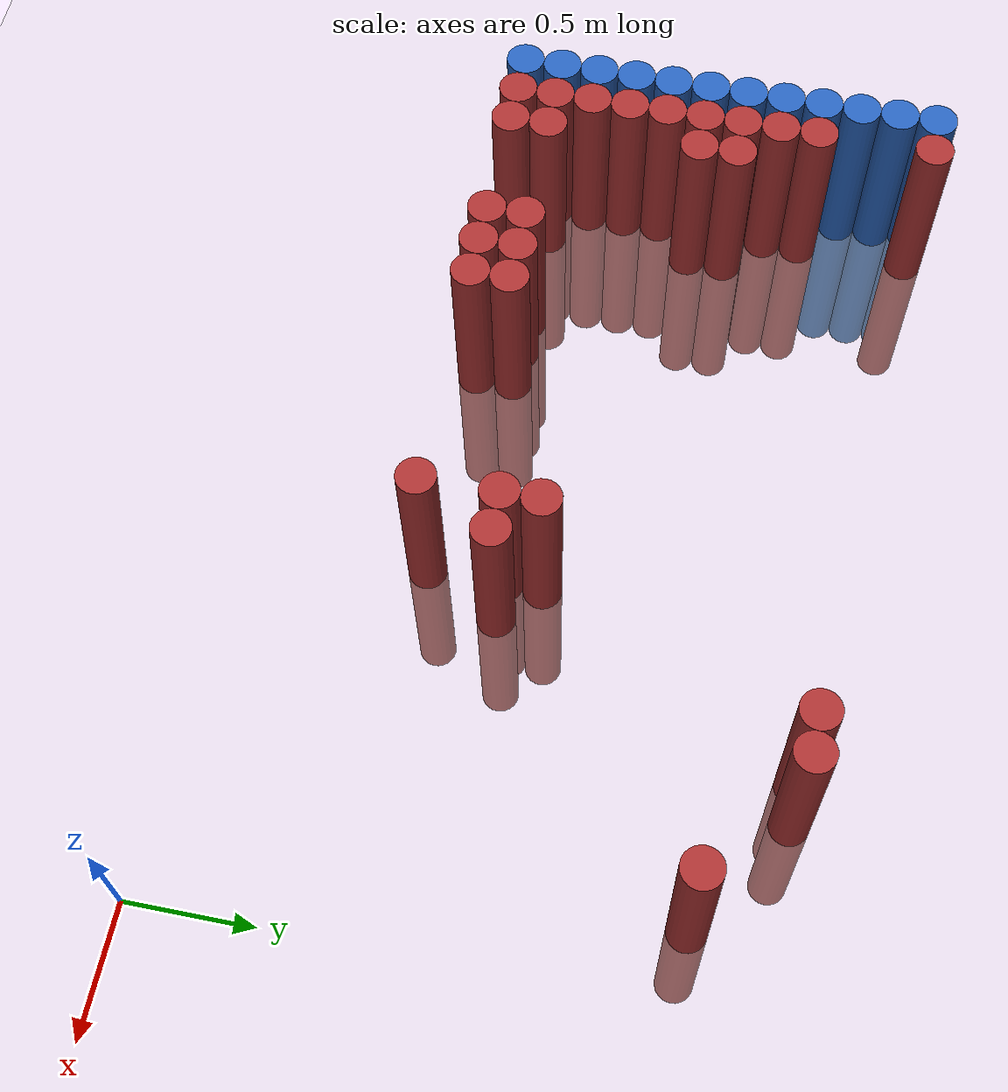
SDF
<sdf version="1.6">
 <world name="default">
  <model name="ground_plane">
   <static>1</static>
   <link name="link">
    <collision name="collision">
     <geometry><plane><normal>0 0 1</normal><size>100 100</size></plane></geometry>
     <surface><friction><ode><mu>100</mu><mu2>50</mu2></ode></friction></surface>
    </collision>
    <visual name="visual">
     <cast_shadows>0</cast_shadows>
     <geometry><plane><normal>0 0 1</normal><size>100 100</size></plane></geometry>
     <material>
      <script><uri>file://media/materials/scripts/gazebo.material</uri><name>Gazebo/Grey</name></script>
     </material>
    </visual>
   </link>
  </model>
  <model name="unit_cylinder_125">
   <static>1</static>
   <pose>-3.425000 0.775000 0.000000 0.000000 0.000000 0.000000</pose>
   <link name="link">
    <inertial>
     <mass>1</mass>
     <inertia><ixx>0.145833</ixx><ixy>0</ixy><ixz>0</ixz><iyy>0.145833</iyy><iyz>0</iyz><izz>0.125</izz></inertia>
    </inertial>
    <collision name="collision">
     <geometry><cylinder><radius>0.075000</radius><length>1.5</length></cylinder></geometry>
    </collision>
    <visual name="visual">
     <geometry><cylinder><radius>0.075000</radius><length>1.5</length></cylinder></geometry>
     <material>
      <ambient>0.152000 0.379000 0.720000 1</ambient>
      <diffuse>0.152000 0.379000 0.720000 1</diffuse>
     </material>
     <material>
      <script><name>Gazebo/Grey</name><uri>file://media/materials/scripts/gazebo.material</uri></script>
     </material>
    </visual>
   </link>
  </model>
  <model name="unit_cylinder_127">
   <static>1</static>
   <pose>-3.425000 0.925000 0.000000 0.000000 0.000000 0.000000</pose>
   <link name="link">
    <inertial>
     <mass>1</mass>
     <inertia><ixx>0.145833</ixx><ixy>0</ixy><ixz>0</ixz><iyy>0.145833</iyy><iyz>0</iyz><izz>0.125</izz></inertia>
    </inertial>
    <collision name="collision">
     <geometry><cylinder><radius>0.075000</radius><length>1.5</length></cylinder></geometry>
    </collision>
    <visual name="visual">
     <geometry><cylinder><radius>0.075000</radius><length>1.5</length></cylinder></geometry>
     <material>
      <ambient>0.152000 0.379000 0.720000 1</ambient>
      <diffuse>0.152000 0.379000 0.720000 1</diffuse>
     </material>
     <material>
      <script><name>Gazebo/Grey</name><uri>file://media/materials/scripts/gazebo.material</uri></script>
     </material>
    </visual>
   </link>
  </model>
  <model name="unit_cylinder_129">
   <static>1</static>
   <pose>-3.425000 1.075000 0.000000 0.000000 0.000000 0.000000</pose>
   <link name="link">
    <inertial>
     <mass>1</mass>
     <inertia><ixx>0.145833</ixx><ixy>0</ixy><ixz>0</ixz><iyy>0.145833</iyy><iyz>0</iyz><izz>0.125</izz></inertia>
    </inertial>
    <collision name="collision">
     <geometry><cylinder><radius>0.075000</radius><length>1.5</length></cylinder></geometry>
    </collision>
    <visual name="visual">
     <geometry><cylinder><radius>0.075000</radius><length>1.5</length></cylinder></geometry>
     <material>
      <ambient>0.152000 0.379000 0.720000 1</ambient>
      <diffuse>0.152000 0.379000 0.720000 1</diffuse>
     </material>
     <material>
      <script><name>Gazebo/Grey</name><uri>file://media/materials/scripts/gazebo.material</uri></script>
     </material>
    </visual>
   </link>
  </model>
  <model name="unit_cylinder_131">
   <static>1</static>
   <pose>-3.425000 1.225000 0.000000 0.000000 0.000000 0.000000</pose>
   <link name="link">
    <inertial>
     <mass>1</mass>
     <inertia><ixx>0.145833</ixx><ixy>0</ixy><ixz>0</ixz><iyy>0.145833</iyy><iyz>0</iyz><izz>0.125</izz></inertia>
    </inertial>
    <collision name="collision">
     <geometry><cylinder><radius>0.075000</radius><length>1.5</length></cylinder></geometry>
    </collision>
    <visual name="visual">
     <geometry><cylinder><radius>0.075000</radius><length>1.5</length></cylinder></geometry>
     <material>
      <ambient>0.152000 0.379000 0.720000 1</ambient>
      <diffuse>0.152000 0.379000 0.720000 1</diffuse>
     </material>
     <material>
      <script><name>Gazebo/Grey</name><uri>file://media/materials/scripts/gazebo.material</uri></script>
     </material>
    </visual>
   </link>
  </model>
  <model name="unit_cylinder_133">
   <static>1</static>
   <pose>-3.425000 1.375000 0.000000 0.000000 0.000000 0.000000</pose>
   <link name="link">
    <inertial>
     <mass>1</mass>
     <inertia><ixx>0.145833</ixx><ixy>0</ixy><ixz>0</ixz><iyy>0.145833</iyy><iyz>0</iyz><izz>0.125</izz></inertia>
    </inertial>
    <collision name="collision">
     <geometry><cylinder><radius>0.075000</radius><length>1.5</length></cylinder></geometry>
    </collision>
    <visual name="visual">
     <geometry><cylinder><radius>0.075000</radius><length>1.5</length></cylinder></geometry>
     <material>
      <ambient>0.152000 0.379000 0.720000 1</ambient>
      <diffuse>0.152000 0.379000 0.720000 1</diffuse>
     </material>
     <material>
      <script><name>Gazebo/Grey</name><uri>file://media/materials/scripts/gazebo.material</uri></script>
     </material>
    </visual>
   </link>
  </model>
  <model name="unit_cylinder_135">
   <static>1</static>
   <pose>-3.425000 1.525000 0.000000 0.000000 0.000000 0.000000</pose>
   <link name="link">
    <inertial>
     <mass>1</mass>
     <inertia><ixx>0.145833</ixx><ixy>0</ixy><ixz>0</ixz><iyy>0.145833</iyy><iyz>0</iyz><izz>0.125</izz></inertia>
    </inertial>
    <collision name="collision">
     <geometry><cylinder><radius>0.075000</radius><length>1.5</length></cylinder></geometry>
    </collision>
    <visual name="visual">
     <geometry><cylinder><radius>0.075000</radius><length>1.5</length></cylinder></geometry>
     <material>
      <ambient>0.152000 0.379000 0.720000 1</ambient>
      <diffuse>0.152000 0.379000 0.720000 1</diffuse>
     </material>
     <material>
      <script><name>Gazebo/Grey</name><uri>file://media/materials/scripts/gazebo.material</uri></script>
     </material>
    </visual>
   </link>
  </model>
  <model name="unit_cylinder_137">
   <static>1</static>
   <pose>-3.425000 1.675000 0.000000 0.000000 0.000000 0.000000</pose>
   <link name="link">
    <inertial>
     <mass>1</mass>
     <inertia><ixx>0.145833</ixx><ixy>0</ixy><ixz>0</ixz><iyy>0.145833</iyy><iyz>0</iyz><izz>0.125</izz></inertia>
    </inertial>
    <collision name="collision">
     <geometry><cylinder><radius>0.075000</radius><length>1.5</length></cylinder></geometry>
    </collision>
    <visual name="visual">
     <geometry><cylinder><radius>0.075000</radius><length>1.5</length></cylinder></geometry>
     <material>
      <ambient>0.152000 0.379000 0.720000 1</ambient>
      <diffuse>0.152000 0.379000 0.720000 1</diffuse>
     </material>
     <material>
      <script><name>Gazebo/Grey</name><uri>file://media/materials/scripts/gazebo.material</uri></script>
     </material>
    </visual>
   </link>
  </model>
  <model name="unit_cylinder_139">
   <static>1</static>
   <pose>-3.425000 1.825000 0.000000 0.000000 0.000000 0.000000</pose>
   <link name="link">
    <inertial>
     <mass>1</mass>
     <inertia><ixx>0.145833</ixx><ixy>0</ixy><ixz>0</ixz><iyy>0.145833</iyy><iyz>0</iyz><izz>0.125</izz></inertia>
    </inertial>
    <collision name="collision">
     <geometry><cylinder><radius>0.075000</radius><length>1.5</length></cylinder></geometry>
    </collision>
    <visual name="visual">
     <geometry><cylinder><radius>0.075000</radius><length>1.5</length></cylinder></geometry>
     <material>
      <ambient>0.152000 0.379000 0.720000 1</ambient>
      <diffuse>0.152000 0.379000 0.720000 1</diffuse>
     </material>
     <material>
      <script><name>Gazebo/Grey</name><uri>file://media/materials/scripts/gazebo.material</uri></script>
     </material>
    </visual>
   </link>
  </model>
  <model name="unit_cylinder_141">
   <static>1</static>
   <pose>-3.425000 1.975000 0.000000 0.000000 0.000000 0.000000</pose>
   <link name="link">
    <inertial>
     <mass>1</mass>
     <inertia><ixx>0.145833</ixx><ixy>0</ixy><ixz>0</ixz><iyy>0.145833</iyy><iyz>0</iyz><izz>0.125</izz></inertia>
    </inertial>
    <collision name="collision">
     <geometry><cylinder><radius>0.075000</radius><length>1.5</length></cylinder></geometry>
    </collision>
    <visual name="visual">
     <geometry><cylinder><radius>0.075000</radius><length>1.5</length></cylinder></geometry>
     <material>
      <ambient>0.152000 0.379000 0.720000 1</ambient>
      <diffuse>0.152000 0.379000 0.720000 1</diffuse>
     </material>
     <material>
      <script><name>Gazebo/Grey</name><uri>file://media/materials/scripts/gazebo.material</uri></script>
     </material>
    </visual>
   </link>
  </model>
  <model name="unit_cylinder_143">
   <static>1</static>
   <pose>-3.425000 2.125000 0.000000 0.000000 0.000000 0.000000</pose>
   <link name="link">
    <inertial>
     <mass>1</mass>
     <inertia><ixx>0.145833</ixx><ixy>0</ixy><ixz>0</ixz><iyy>0.145833</iyy><iyz>0</iyz><izz>0.125</izz></inertia>
    </inertial>
    <collision name="collision">
     <geometry><cylinder><radius>0.075000</radius><length>1.5</length></cylinder></geometry>
    </collision>
    <visual name="visual">
     <geometry><cylinder><radius>0.075000</radius><length>1.5</length></cylinder></geometry>
     <material>
      <ambient>0.152000 0.379000 0.720000 1</ambient>
      <diffuse>0.152000 0.379000 0.720000 1</diffuse>
     </material>
     <material>
      <script><name>Gazebo/Grey</name><uri>file://media/materials/scripts/gazebo.material</uri></script>
     </material>
    </visual>
   </link>
  </model>
  <model name="unit_cylinder_145">
   <static>1</static>
   <pose>-3.425000 2.275000 0.000000 0.000000 0.000000 0.000000</pose>
   <link name="link">
    <inertial>
     <mass>1</mass>
     <inertia><ixx>0.145833</ixx><ixy>0</ixy><ixz>0</ixz><iyy>0.145833</iyy><iyz>0</iyz><izz>0.125</izz></inertia>
    </inertial>
    <collision name="collision">
     <geometry><cylinder><radius>0.075000</radius><length>1.5</length></cylinder></geometry>
    </collision>
    <visual name="visual">
     <geometry><cylinder><radius>0.075000</radius><length>1.5</length></cylinder></geometry>
     <material>
      <ambient>0.152000 0.379000 0.720000 1</ambient>
      <diffuse>0.152000 0.379000 0.720000 1</diffuse>
     </material>
     <material>
      <script><name>Gazebo/Grey</name><uri>file://media/materials/scripts/gazebo.material</uri></script>
     </material>
    </visual>
   </link>
  </model>
  <model name="unit_cylinder_147">
   <static>1</static>
   <pose>-3.425000 2.425000 0.000000 0.000000 0.000000 0.000000</pose>
   <link name="link">
    <inertial>
     <mass>1</mass>
     <inertia><ixx>0.145833</ixx><ixy>0</ixy><ixz>0</ixz><iyy>0.145833</iyy><iyz>0</iyz><izz>0.125</izz></inertia>
    </inertial>
    <collision name="collision">
     <geometry><cylinder><radius>0.075000</radius><length>1.5</length></cylinder></geometry>
    </collision>
    <visual name="visual">
     <geometry><cylinder><radius>0.075000</radius><length>1.5</length></cylinder></geometry>
     <material>
      <ambient>0.152000 0.379000 0.720000 1</ambient>
      <diffuse>0.152000 0.379000 0.720000 1</diffuse>
     </material>
     <material>
      <script><name>Gazebo/Grey</name><uri>file://media/materials/scripts/gazebo.material</uri></script>
     </material>
    </visual>
   </link>
  </model>
  <model name="unit_cylinder_226">
   <static>1</static>
   <pose>-3.425000 0.775000 0.000000 0.000000 0.000000 0.000000</pose>
   <link name="link">
    <inertial>
     <mass>1</mass>
     <inertia><ixx>0.145833</ixx><ixy>0</ixy><ixz>0</ixz><iyy>0.145833</iyy><iyz>0</iyz><izz>0.125</izz></inertia>
    </inertial>
    <collision name="collision">
     <geometry><cylinder><radius>0.075000</radius><length>1.5</length></cylinder></geometry>
    </collision>
    <visual name="visual">
     <geometry><cylinder><radius>0.075000</radius><length>1.5</length></cylinder></geometry>
     <material>
      <ambient>0.152000 0.379000 0.720000 1</ambient>
      <diffuse>0.152000 0.379000 0.720000 1</diffuse>
     </material>
     <material>
      <script><name>Gazebo/Grey</name><uri>file://media/materials/scripts/gazebo.material</uri></script>
     </material>
    </visual>
   </link>
  </model>
  <model name="unit_cylinder_227">
   <static>1</static>
   <pose>-3.425000 0.925000 0.000000 0.000000 0.000000 0.000000</pose>
   <link name="link">
    <inertial>
     <mass>1</mass>
     <inertia><ixx>0.145833</ixx><ixy>0</ixy><ixz>0</ixz><iyy>0.145833</iyy><iyz>0</iyz><izz>0.125</izz></inertia>
    </inertial>
    <collision name="collision">
     <geometry><cylinder><radius>0.075000</radius><length>1.5</length></cylinder></geometry>
    </collision>
    <visual name="visual">
     <geometry><cylinder><radius>0.075000</radius><length>1.5</length></cylinder></geometry>
     <material>
      <ambient>0.152000 0.379000 0.720000 1</ambient>
      <diffuse>0.152000 0.379000 0.720000 1</diffuse>
     </material>
     <material>
      <script><name>Gazebo/Grey</name><uri>file://media/materials/scripts/gazebo.material</uri></script>
     </material>
    </visual>
   </link>
  </model>
  <model name="unit_cylinder_228">
   <static>1</static>
   <pose>-3.425000 1.075000 0.000000 0.000000 0.000000 0.000000</pose>
   <link name="link">
    <inertial>
     <mass>1</mass>
     <inertia><ixx>0.145833</ixx><ixy>0</ixy><ixz>0</ixz><iyy>0.145833</iyy><iyz>0</iyz><izz>0.125</izz></inertia>
    </inertial>
    <collision name="collision">
     <geometry><cylinder><radius>0.075000</radius><length>1.5</length></cylinder></geometry>
    </collision>
    <visual name="visual">
     <geometry><cylinder><radius>0.075000</radius><length>1.5</length></cylinder></geometry>
     <material>
      <ambient>0.152000 0.379000 0.720000 1</ambient>
      <diffuse>0.152000 0.379000 0.720000 1</diffuse>
     </material>
     <material>
      <script><name>Gazebo/Grey</name><uri>file://media/materials/scripts/gazebo.material</uri></script>
     </material>
    </visual>
   </link>
  </model>
  <model name="unit_cylinder_229">
   <static>1</static>
   <pose>-3.425000 1.225000 0.000000 0.000000 0.000000 0.000000</pose>
   <link name="link">
    <inertial>
     <mass>1</mass>
     <inertia><ixx>0.145833</ixx><ixy>0</ixy><ixz>0</ixz><iyy>0.145833</iyy><iyz>0</iyz><izz>0.125</izz></inertia>
    </inertial>
    <collision name="collision">
     <geometry><cylinder><radius>0.075000</radius><length>1.5</length></cylinder></geometry>
    </collision>
    <visual name="visual">
     <geometry><cylinder><radius>0.075000</radius><length>1.5</length></cylinder></geometry>
     <material>
      <ambient>0.152000 0.379000 0.720000 1</ambient>
      <diffuse>0.152000 0.379000 0.720000 1</diffuse>
     </material>
     <material>
      <script><name>Gazebo/Grey</name><uri>file://media/materials/scripts/gazebo.material</uri></script>
     </material>
    </visual>
   </link>
  </model>
  <model name="unit_cylinder_230">
   <static>1</static>
   <pose>-3.425000 1.375000 0.000000 0.000000 0.000000 0.000000</pose>
   <link name="link">
    <inertial>
     <mass>1</mass>
     <inertia><ixx>0.145833</ixx><ixy>0</ixy><ixz>0</ixz><iyy>0.145833</iyy><iyz>0</iyz><izz>0.125</izz></inertia>
    </inertial>
    <collision name="collision">
     <geometry><cylinder><radius>0.075000</radius><length>1.5</length></cylinder></geometry>
    </collision>
    <visual name="visual">
     <geometry><cylinder><radius>0.075000</radius><length>1.5</length></cylinder></geometry>
     <material>
      <ambient>0.152000 0.379000 0.720000 1</ambient>
      <diffuse>0.152000 0.379000 0.720000 1</diffuse>
     </material>
     <material>
      <script><name>Gazebo/Grey</name><uri>file://media/materials/scripts/gazebo.material</uri></script>
     </material>
    </visual>
   </link>
  </model>
  <model name="unit_cylinder_231">
   <static>1</static>
   <pose>-3.425000 1.525000 0.000000 0.000000 0.000000 0.000000</pose>
   <link name="link">
    <inertial>
     <mass>1</mass>
     <inertia><ixx>0.145833</ixx><ixy>0</ixy><ixz>0</ixz><iyy>0.145833</iyy><iyz>0</iyz><izz>0.125</izz></inertia>
    </inertial>
    <collision name="collision">
     <geometry><cylinder><radius>0.075000</radius><length>1.5</length></cylinder></geometry>
    </collision>
    <visual name="visual">
     <geometry><cylinder><radius>0.075000</radius><length>1.5</length></cylinder></geometry>
     <material>
      <ambient>0.152000 0.379000 0.720000 1</ambient>
      <diffuse>0.152000 0.379000 0.720000 1</diffuse>
     </material>
     <material>
      <script><name>Gazebo/Grey</name><uri>file://media/materials/scripts/gazebo.material</uri></script>
     </material>
    </visual>
   </link>
  </model>
  <model name="unit_cylinder_232">
   <static>1</static>
   <pose>-3.425000 1.675000 0.000000 0.000000 0.000000 0.000000</pose>
   <link name="link">
    <inertial>
     <mass>1</mass>
     <inertia><ixx>0.145833</ixx><ixy>0</ixy><ixz>0</ixz><iyy>0.145833</iyy><iyz>0</iyz><izz>0.125</izz></inertia>
    </inertial>
    <collision name="collision">
     <geometry><cylinder><radius>0.075000</radius><length>1.5</length></cylinder></geometry>
    </collision>
    <visual name="visual">
     <geometry><cylinder><radius>0.075000</radius><length>1.5</length></cylinder></geometry>
     <material>
      <ambient>0.152000 0.379000 0.720000 1</ambient>
      <diffuse>0.152000 0.379000 0.720000 1</diffuse>
     </material>
     <material>
      <script><name>Gazebo/Grey</name><uri>file://media/materials/scripts/gazebo.material</uri></script>
     </material>
    </visual>
   </link>
  </model>
  <model name="unit_cylinder_233">
   <static>1</static>
   <pose>-3.425000 1.825000 0.000000 0.000000 0.000000 0.000000</pose>
   <link name="link">
    <inertial>
     <mass>1</mass>
     <inertia><ixx>0.145833</ixx><ixy>0</ixy><ixz>0</ixz><iyy>0.145833</iyy><iyz>0</iyz><izz>0.125</izz></inertia>
    </inertial>
    <collision name="collision">
     <geometry><cylinder><radius>0.075000</radius><length>1.5</length></cylinder></geometry>
    </collision>
    <visual name="visual">
     <geometry><cylinder><radius>0.075000</radius><length>1.5</length></cylinder></geometry>
     <material>
      <ambient>0.152000 0.379000 0.720000 1</ambient>
      <diffuse>0.152000 0.379000 0.720000 1</diffuse>
     </material>
     <material>
      <script><name>Gazebo/Grey</name><uri>file://media/materials/scripts/gazebo.material</uri></script>
     </material>
    </visual>
   </link>
  </model>
  <model name="unit_cylinder_234">
   <static>1</static>
   <pose>-3.425000 1.975000 0.000000 0.000000 0.000000 0.000000</pose>
   <link name="link">
    <inertial>
     <mass>1</mass>
     <inertia><ixx>0.145833</ixx><ixy>0</ixy><ixz>0</ixz><iyy>0.145833</iyy><iyz>0</iyz><izz>0.125</izz></inertia>
    </inertial>
    <collision name="collision">
     <geometry><cylinder><radius>0.075000</radius><length>1.5</length></cylinder></geometry>
    </collision>
    <visual name="visual">
     <geometry><cylinder><radius>0.075000</radius><length>1.5</length></cylinder></geometry>
     <material>
      <ambient>0.152000 0.379000 0.720000 1</ambient>
      <diffuse>0.152000 0.379000 0.720000 1</diffuse>
     </material>
     <material>
      <script><name>Gazebo/Grey</name><uri>file://media/materials/scripts/gazebo.material</uri></script>
     </material>
    </visual>
   </link>
  </model>
  <model name="unit_cylinder_235">
   <static>1</static>
   <pose>-3.425000 2.125000 0.000000 0.000000 0.000000 0.000000</pose>
   <link name="link">
    <inertial>
     <mass>1</mass>
     <inertia><ixx>0.145833</ixx><ixy>0</ixy><ixz>0</ixz><iyy>0.145833</iyy><iyz>0</iyz><izz>0.125</izz></inertia>
    </inertial>
    <collision name="collision">
     <geometry><cylinder><radius>0.075000</radius><length>1.5</length></cylinder></geometry>
    </collision>
    <visual name="visual">
     <geometry><cylinder><radius>0.075000</radius><length>1.5</length></cylinder></geometry>
     <material>
      <ambient>0.152000 0.379000 0.720000 1</ambient>
      <diffuse>0.152000 0.379000 0.720000 1</diffuse>
     </material>
     <material>
      <script><name>Gazebo/Grey</name><uri>file://media/materials/scripts/gazebo.material</uri></script>
     </material>
    </visual>
   </link>
  </model>
  <model name="unit_cylinder_236">
   <static>1</static>
   <pose>-3.425000 2.275000 0.000000 0.000000 0.000000 0.000000</pose>
   <link name="link">
    <inertial>
     <mass>1</mass>
     <inertia><ixx>0.145833</ixx><ixy>0</ixy><ixz>0</ixz><iyy>0.145833</iyy><iyz>0</iyz><izz>0.125</izz></inertia>
    </inertial>
    <collision name="collision">
     <geometry><cylinder><radius>0.075000</radius><length>1.5</length></cylinder></geometry>
    </collision>
    <visual name="visual">
     <geometry><cylinder><radius>0.075000</radius><length>1.5</length></cylinder></geometry>
     <material>
      <ambient>0.152000 0.379000 0.720000 1</ambient>
      <diffuse>0.152000 0.379000 0.720000 1</diffuse>
     </material>
     <material>
      <script><name>Gazebo/Grey</name><uri>file://media/materials/scripts/gazebo.material</uri></script>
     </material>
    </visual>
   </link>
  </model>
  <model name="unit_cylinder_237">
   <static>1</static>
   <pose>-3.425000 2.425000 0.000000 0.000000 0.000000 0.000000</pose>
   <link name="link">
    <inertial>
     <mass>1</mass>
     <inertia><ixx>0.145833</ixx><ixy>0</ixy><ixz>0</ixz><iyy>0.145833</iyy><iyz>0</iyz><izz>0.125</izz></inertia>
    </inertial>
    <collision name="collision">
     <geometry><cylinder><radius>0.075000</radius><length>1.5</length></cylinder></geometry>
    </collision>
    <visual name="visual">
     <geometry><cylinder><radius>0.075000</radius><length>1.5</length></cylinder></geometry>
     <material>
      <ambient>0.152000 0.379000 0.720000 1</ambient>
      <diffuse>0.152000 0.379000 0.720000 1</diffuse>
     </material>
     <material>
      <script><name>Gazebo/Grey</name><uri>file://media/materials/scripts/gazebo.material</uri></script>
     </material>
    </visual>
   </link>
  </model>
  <model name="unit_cylinder_263">
   <static>1</static>
   <pose>-3.275000 0.775000 0.000000 0.000000 0.000000 0.000000</pose>
   <link name="link">
    <inertial>
     <mass>1</mass>
     <inertia><ixx>0.145833</ixx><ixy>0</ixy><ixz>0</ixz><iyy>0.145833</iyy><iyz>0</iyz><izz>0.125</izz></inertia>
    </inertial>
    <collision name="collision">
     <geometry><cylinder><radius>0.075000</radius><length>1.5</length></cylinder></geometry>
    </collision>
    <visual name="visual">
     <geometry><cylinder><radius>0.075000</radius><length>1.5</length></cylinder></geometry>
     <material>
      <ambient>0.648000 0.192000 0.192000 1</ambient>
      <diffuse>0.648000 0.192000 0.192000 1</diffuse>
     </material>
     <material>
      <script><name>Gazebo/Grey</name><uri>file://media/materials/scripts/gazebo.material</uri></script>
     </material>
    </visual>
   </link>
  </model>
  <model name="unit_cylinder_264">
   <static>1</static>
   <pose>-3.275000 0.925000 0.000000 0.000000 0.000000 0.000000</pose>
   <link name="link">
    <inertial>
     <mass>1</mass>
     <inertia><ixx>0.145833</ixx><ixy>0</ixy><ixz>0</ixz><iyy>0.145833</iyy><iyz>0</iyz><izz>0.125</izz></inertia>
    </inertial>
    <collision name="collision">
     <geometry><cylinder><radius>0.075000</radius><length>1.5</length></cylinder></geometry>
    </collision>
    <visual name="visual">
     <geometry><cylinder><radius>0.075000</radius><length>1.5</length></cylinder></geometry>
     <material>
      <ambient>0.648000 0.192000 0.192000 1</ambient>
      <diffuse>0.648000 0.192000 0.192000 1</diffuse>
     </material>
     <material>
      <script><name>Gazebo/Grey</name><uri>file://media/materials/scripts/gazebo.material</uri></script>
     </material>
    </visual>
   </link>
  </model>
  <model name="unit_cylinder_265">
   <static>1</static>
   <pose>-3.275000 1.075000 0.000000 0.000000 0.000000 0.000000</pose>
   <link name="link">
    <inertial>
     <mass>1</mass>
     <inertia><ixx>0.145833</ixx><ixy>0</ixy><ixz>0</ixz><iyy>0.145833</iyy><iyz>0</iyz><izz>0.125</izz></inertia>
    </inertial>
    <collision name="collision">
     <geometry><cylinder><radius>0.075000</radius><length>1.5</length></cylinder></geometry>
    </collision>
    <visual name="visual">
     <geometry><cylinder><radius>0.075000</radius><length>1.5</length></cylinder></geometry>
     <material>
      <ambient>0.648000 0.192000 0.192000 1</ambient>
      <diffuse>0.648000 0.192000 0.192000 1</diffuse>
     </material>
     <material>
      <script><name>Gazebo/Grey</name><uri>file://media/materials/scripts/gazebo.material</uri></script>
     </material>
    </visual>
   </link>
  </model>
  <model name="unit_cylinder_266">
   <static>1</static>
   <pose>-3.275000 1.225000 0.000000 0.000000 0.000000 0.000000</pose>
   <link name="link">
    <inertial>
     <mass>1</mass>
     <inertia><ixx>0.145833</ixx><ixy>0</ixy><ixz>0</ixz><iyy>0.145833</iyy><iyz>0</iyz><izz>0.125</izz></inertia>
    </inertial>
    <collision name="collision">
     <geometry><cylinder><radius>0.075000</radius><length>1.5</length></cylinder></geometry>
    </collision>
    <visual name="visual">
     <geometry><cylinder><radius>0.075000</radius><length>1.5</length></cylinder></geometry>
     <material>
      <ambient>0.648000 0.192000 0.192000 1</ambient>
      <diffuse>0.648000 0.192000 0.192000 1</diffuse>
     </material>
     <material>
      <script><name>Gazebo/Grey</name><uri>file://media/materials/scripts/gazebo.material</uri></script>
     </material>
    </visual>
   </link>
  </model>
  <model name="unit_cylinder_267">
   <static>1</static>
   <pose>-3.275000 1.375000 0.000000 0.000000 0.000000 0.000000</pose>
   <link name="link">
    <inertial>
     <mass>1</mass>
     <inertia><ixx>0.145833</ixx><ixy>0</ixy><ixz>0</ixz><iyy>0.145833</iyy><iyz>0</iyz><izz>0.125</izz></inertia>
    </inertial>
    <collision name="collision">
     <geometry><cylinder><radius>0.075000</radius><length>1.5</length></cylinder></geometry>
    </collision>
    <visual name="visual">
     <geometry><cylinder><radius>0.075000</radius><length>1.5</length></cylinder></geometry>
     <material>
      <ambient>0.648000 0.192000 0.192000 1</ambient>
      <diffuse>0.648000 0.192000 0.192000 1</diffuse>
     </material>
     <material>
      <script><name>Gazebo/Grey</name><uri>file://media/materials/scripts/gazebo.material</uri></script>
     </material>
    </visual>
   </link>
  </model>
  <model name="unit_cylinder_268">
   <static>1</static>
   <pose>-3.275000 1.525000 0.000000 0.000000 0.000000 0.000000</pose>
   <link name="link">
    <inertial>
     <mass>1</mass>
     <inertia><ixx>0.145833</ixx><ixy>0</ixy><ixz>0</ixz><iyy>0.145833</iyy><iyz>0</iyz><izz>0.125</izz></inertia>
    </inertial>
    <collision name="collision">
     <geometry><cylinder><radius>0.075000</radius><length>1.5</length></cylinder></geometry>
    </collision>
    <visual name="visual">
     <geometry><cylinder><radius>0.075000</radius><length>1.5</length></cylinder></geometry>
     <material>
      <ambient>0.648000 0.192000 0.192000 1</ambient>
      <diffuse>0.648000 0.192000 0.192000 1</diffuse>
     </material>
     <material>
      <script><name>Gazebo/Grey</name><uri>file://media/materials/scripts/gazebo.material</uri></script>
     </material>
    </visual>
   </link>
  </model>
  <model name="unit_cylinder_269">
   <static>1</static>
   <pose>-3.275000 1.675000 0.000000 0.000000 0.000000 0.000000</pose>
   <link name="link">
    <inertial>
     <mass>1</mass>
     <inertia><ixx>0.145833</ixx><ixy>0</ixy><ixz>0</ixz><iyy>0.145833</iyy><iyz>0</iyz><izz>0.125</izz></inertia>
    </inertial>
    <collision name="collision">
     <geometry><cylinder><radius>0.075000</radius><length>1.5</length></cylinder></geometry>
    </collision>
    <visual name="visual">
     <geometry><cylinder><radius>0.075000</radius><length>1.5</length></cylinder></geometry>
     <material>
      <ambient>0.648000 0.192000 0.192000 1</ambient>
      <diffuse>0.648000 0.192000 0.192000 1</diffuse>
     </material>
     <material>
      <script><name>Gazebo/Grey</name><uri>file://media/materials/scripts/gazebo.material</uri></script>
     </material>
    </visual>
   </link>
  </model>
  <model name="unit_cylinder_270">
   <static>1</static>
   <pose>-3.275000 1.825000 0.000000 0.000000 0.000000 0.000000</pose>
   <link name="link">
    <inertial>
     <mass>1</mass>
     <inertia><ixx>0.145833</ixx><ixy>0</ixy><ixz>0</ixz><iyy>0.145833</iyy><iyz>0</iyz><izz>0.125</izz></inertia>
    </inertial>
    <collision name="collision">
     <geometry><cylinder><radius>0.075000</radius><length>1.5</length></cylinder></geometry>
    </collision>
    <visual name="visual">
     <geometry><cylinder><radius>0.075000</radius><length>1.5</length></cylinder></geometry>
     <material>
      <ambient>0.648000 0.192000 0.192000 1</ambient>
      <diffuse>0.648000 0.192000 0.192000 1</diffuse>
     </material>
     <material>
      <script><name>Gazebo/Grey</name><uri>file://media/materials/scripts/gazebo.material</uri></script>
     </material>
    </visual>
   </link>
  </model>
  <model name="unit_cylinder_271">
   <static>1</static>
   <pose>-3.275000 1.975000 0.000000 0.000000 0.000000 0.000000</pose>
   <link name="link">
    <inertial>
     <mass>1</mass>
     <inertia><ixx>0.145833</ixx><ixy>0</ixy><ixz>0</ixz><iyy>0.145833</iyy><iyz>0</iyz><izz>0.125</izz></inertia>
    </inertial>
    <collision name="collision">
     <geometry><cylinder><radius>0.075000</radius><length>1.5</length></cylinder></geometry>
    </collision>
    <visual name="visual">
     <geometry><cylinder><radius>0.075000</radius><length>1.5</length></cylinder></geometry>
     <material>
      <ambient>0.648000 0.192000 0.192000 1</ambient>
      <diffuse>0.648000 0.192000 0.192000 1</diffuse>
     </material>
     <material>
      <script><name>Gazebo/Grey</name><uri>file://media/materials/scripts/gazebo.material</uri></script>
     </material>
    </visual>
   </link>
  </model>
  <model name="unit_cylinder_272">
   <static>1</static>
   <pose>-3.275000 2.425000 0.000000 0.000000 0.000000 0.000000</pose>
   <link name="link">
    <inertial>
     <mass>1</mass>
     <inertia><ixx>0.145833</ixx><ixy>0</ixy><ixz>0</ixz><iyy>0.145833</iyy><iyz>0</iyz><izz>0.125</izz></inertia>
    </inertial>
    <collision name="collision">
     <geometry><cylinder><radius>0.075000</radius><length>1.5</length></cylinder></geometry>
    </collision>
    <visual name="visual">
     <geometry><cylinder><radius>0.075000</radius><length>1.5</length></cylinder></geometry>
     <material>
      <ambient>0.648000 0.192000 0.192000 1</ambient>
      <diffuse>0.648000 0.192000 0.192000 1</diffuse>
     </material>
     <material>
      <script><name>Gazebo/Grey</name><uri>file://media/materials/scripts/gazebo.material</uri></script>
     </material>
    </visual>
   </link>
  </model>
  <model name="unit_cylinder_281">
   <static>1</static>
   <pose>-3.125000 0.775000 0.000000 0.000000 0.000000 0.000000</pose>
   <link name="link">
    <inertial>
     <mass>1</mass>
     <inertia><ixx>0.145833</ixx><ixy>0</ixy><ixz>0</ixz><iyy>0.145833</iyy><iyz>0</iyz><izz>0.125</izz></inertia>
    </inertial>
    <collision name="collision">
     <geometry><cylinder><radius>0.075000</radius><length>1.5</length></cylinder></geometry>
    </collision>
    <visual name="visual">
     <geometry><cylinder><radius>0.075000</radius><length>1.5</length></cylinder></geometry>
     <material>
      <ambient>0.648000 0.192000 0.192000 1</ambient>
      <diffuse>0.648000 0.192000 0.192000 1</diffuse>
     </material>
     <material>
      <script><name>Gazebo/Grey</name><uri>file://media/materials/scripts/gazebo.material</uri></script>
     </material>
    </visual>
   </link>
  </model>
  <model name="unit_cylinder_282">
   <static>1</static>
   <pose>-3.125000 0.925000 0.000000 0.000000 0.000000 0.000000</pose>
   <link name="link">
    <inertial>
     <mass>1</mass>
     <inertia><ixx>0.145833</ixx><ixy>0</ixy><ixz>0</ixz><iyy>0.145833</iyy><iyz>0</iyz><izz>0.125</izz></inertia>
    </inertial>
    <collision name="collision">
     <geometry><cylinder><radius>0.075000</radius><length>1.5</length></cylinder></geometry>
    </collision>
    <visual name="visual">
     <geometry><cylinder><radius>0.075000</radius><length>1.5</length></cylinder></geometry>
     <material>
      <ambient>0.648000 0.192000 0.192000 1</ambient>
      <diffuse>0.648000 0.192000 0.192000 1</diffuse>
     </material>
     <material>
      <script><name>Gazebo/Grey</name><uri>file://media/materials/scripts/gazebo.material</uri></script>
     </material>
    </visual>
   </link>
  </model>
  <model name="unit_cylinder_283">
   <static>1</static>
   <pose>-3.125000 1.525000 0.000000 0.000000 0.000000 0.000000</pose>
   <link name="link">
    <inertial>
     <mass>1</mass>
     <inertia><ixx>0.145833</ixx><ixy>0</ixy><ixz>0</ixz><iyy>0.145833</iyy><iyz>0</iyz><izz>0.125</izz></inertia>
    </inertial>
    <collision name="collision">
     <geometry><cylinder><radius>0.075000</radius><length>1.5</length></cylinder></geometry>
    </collision>
    <visual name="visual">
     <geometry><cylinder><radius>0.075000</radius><length>1.5</length></cylinder></geometry>
     <material>
      <ambient>0.648000 0.192000 0.192000 1</ambient>
      <diffuse>0.648000 0.192000 0.192000 1</diffuse>
     </material>
     <material>
      <script><name>Gazebo/Grey</name><uri>file://media/materials/scripts/gazebo.material</uri></script>
     </material>
    </visual>
   </link>
  </model>
  <model name="unit_cylinder_284">
   <static>1</static>
   <pose>-3.125000 1.675000 0.000000 0.000000 0.000000 0.000000</pose>
   <link name="link">
    <inertial>
     <mass>1</mass>
     <inertia><ixx>0.145833</ixx><ixy>0</ixy><ixz>0</ixz><iyy>0.145833</iyy><iyz>0</iyz><izz>0.125</izz></inertia>
    </inertial>
    <collision name="collision">
     <geometry><cylinder><radius>0.075000</radius><length>1.5</length></cylinder></geometry>
    </collision>
    <visual name="visual">
     <geometry><cylinder><radius>0.075000</radius><length>1.5</length></cylinder></geometry>
     <material>
      <ambient>0.648000 0.192000 0.192000 1</ambient>
      <diffuse>0.648000 0.192000 0.192000 1</diffuse>
     </material>
     <material>
      <script><name>Gazebo/Grey</name><uri>file://media/materials/scripts/gazebo.material</uri></script>
     </material>
    </visual>
   </link>
  </model>
  <model name="unit_cylinder_298">
   <static>1</static>
   <pose>-2.675000 0.775000 0.000000 0.000000 0.000000 0.000000</pose>
   <link name="link">
    <inertial>
     <mass>1</mass>
     <inertia><ixx>0.145833</ixx><ixy>0</ixy><ixz>0</ixz><iyy>0.145833</iyy><iyz>0</iyz><izz>0.125</izz></inertia>
    </inertial>
    <collision name="collision">
     <geometry><cylinder><radius>0.075000</radius><length>1.5</length></cylinder></geometry>
    </collision>
    <visual name="visual">
     <geometry><cylinder><radius>0.075000</radius><length>1.5</length></cylinder></geometry>
     <material>
      <ambient>0.648000 0.192000 0.192000 1</ambient>
      <diffuse>0.648000 0.192000 0.192000 1</diffuse>
     </material>
     <material>
      <script><name>Gazebo/Grey</name><uri>file://media/materials/scripts/gazebo.material</uri></script>
     </material>
    </visual>
   </link>
  </model>
  <model name="unit_cylinder_299">
   <static>1</static>
   <pose>-2.675000 0.925000 0.000000 0.000000 0.000000 0.000000</pose>
   <link name="link">
    <inertial>
     <mass>1</mass>
     <inertia><ixx>0.145833</ixx><ixy>0</ixy><ixz>0</ixz><iyy>0.145833</iyy><iyz>0</iyz><izz>0.125</izz></inertia>
    </inertial>
    <collision name="collision">
     <geometry><cylinder><radius>0.075000</radius><length>1.5</length></cylinder></geometry>
    </collision>
    <visual name="visual">
     <geometry><cylinder><radius>0.075000</radius><length>1.5</length></cylinder></geometry>
     <material>
      <ambient>0.648000 0.192000 0.192000 1</ambient>
      <diffuse>0.648000 0.192000 0.192000 1</diffuse>
     </material>
     <material>
      <script><name>Gazebo/Grey</name><uri>file://media/materials/scripts/gazebo.material</uri></script>
     </material>
    </visual>
   </link>
  </model>
  <model name="unit_cylinder_304">
   <static>1</static>
   <pose>-2.525000 0.775000 0.000000 0.000000 0.000000 0.000000</pose>
   <link name="link">
    <inertial>
     <mass>1</mass>
     <inertia><ixx>0.145833</ixx><ixy>0</ixy><ixz>0</ixz><iyy>0.145833</iyy><iyz>0</iyz><izz>0.125</izz></inertia>
    </inertial>
    <collision name="collision">
     <geometry><cylinder><radius>0.075000</radius><length>1.5</length></cylinder></geometry>
    </collision>
    <visual name="visual">
     <geometry><cylinder><radius>0.075000</radius><length>1.5</length></cylinder></geometry>
     <material>
      <ambient>0.648000 0.192000 0.192000 1</ambient>
      <diffuse>0.648000 0.192000 0.192000 1</diffuse>
     </material>
     <material>
      <script><name>Gazebo/Grey</name><uri>file://media/materials/scripts/gazebo.material</uri></script>
     </material>
    </visual>
   </link>
  </model>
  <model name="unit_cylinder_305">
   <static>1</static>
   <pose>-2.525000 0.925000 0.000000 0.000000 0.000000 0.000000</pose>
   <link name="link">
    <inertial>
     <mass>1</mass>
     <inertia><ixx>0.145833</ixx><ixy>0</ixy><ixz>0</ixz><iyy>0.145833</iyy><iyz>0</iyz><izz>0.125</izz></inertia>
    </inertial>
    <collision name="collision">
     <geometry><cylinder><radius>0.075000</radius><length>1.5</length></cylinder></geometry>
    </collision>
    <visual name="visual">
     <geometry><cylinder><radius>0.075000</radius><length>1.5</length></cylinder></geometry>
     <material>
      <ambient>0.648000 0.192000 0.192000 1</ambient>
      <diffuse>0.648000 0.192000 0.192000 1</diffuse>
     </material>
     <material>
      <script><name>Gazebo/Grey</name><uri>file://media/materials/scripts/gazebo.material</uri></script>
     </material>
    </visual>
   </link>
  </model>
  <model name="unit_cylinder_313">
   <static>1</static>
   <pose>-2.375000 0.775000 0.000000 0.000000 0.000000 0.000000</pose>
   <link name="link">
    <inertial>
     <mass>1</mass>
     <inertia><ixx>0.145833</ixx><ixy>0</ixy><ixz>0</ixz><iyy>0.145833</iyy><iyz>0</iyz><izz>0.125</izz></inertia>
    </inertial>
    <collision name="collision">
     <geometry><cylinder><radius>0.075000</radius><length>1.5</length></cylinder></geometry>
    </collision>
    <visual name="visual">
     <geometry><cylinder><radius>0.075000</radius><length>1.5</length></cylinder></geometry>
     <material>
      <ambient>0.648000 0.192000 0.192000 1</ambient>
      <diffuse>0.648000 0.192000 0.192000 1</diffuse>
     </material>
     <material>
      <script><name>Gazebo/Grey</name><uri>file://media/materials/scripts/gazebo.material</uri></script>
     </material>
    </visual>
   </link>
  </model>
  <model name="unit_cylinder_314">
   <static>1</static>
   <pose>-2.375000 0.925000 0.000000 0.000000 0.000000 0.000000</pose>
   <link name="link">
    <inertial>
     <mass>1</mass>
     <inertia><ixx>0.145833</ixx><ixy>0</ixy><ixz>0</ixz><iyy>0.145833</iyy><iyz>0</iyz><izz>0.125</izz></inertia>
    </inertial>
    <collision name="collision">
     <geometry><cylinder><radius>0.075000</radius><length>1.5</length></cylinder></geometry>
    </collision>
    <visual name="visual">
     <geometry><cylinder><radius>0.075000</radius><length>1.5</length></cylinder></geometry>
     <material>
      <ambient>0.648000 0.192000 0.192000 1</ambient>
      <diffuse>0.648000 0.192000 0.192000 1</diffuse>
     </material>
     <material>
      <script><name>Gazebo/Grey</name><uri>file://media/materials/scripts/gazebo.material</uri></script>
     </material>
    </visual>
   </link>
  </model>
  <model name="unit_cylinder_339">
   <static>1</static>
   <pose>-1.475000 0.775000 0.000000 0.000000 0.000000 0.000000</pose>
   <link name="link">
    <inertial>
     <mass>1</mass>
     <inertia><ixx>0.145833</ixx><ixy>0</ixy><ixz>0</ixz><iyy>0.145833</iyy><iyz>0</iyz><izz>0.125</izz></inertia>
    </inertial>
    <collision name="collision">
     <geometry><cylinder><radius>0.075000</radius><length>1.5</length></cylinder></geometry>
    </collision>
    <visual name="visual">
     <geometry><cylinder><radius>0.075000</radius><length>1.5</length></cylinder></geometry>
     <material>
      <ambient>0.648000 0.192000 0.192000 1</ambient>
      <diffuse>0.648000 0.192000 0.192000 1</diffuse>
     </material>
     <material>
      <script><name>Gazebo/Grey</name><uri>file://media/materials/scripts/gazebo.material</uri></script>
     </material>
    </visual>
   </link>
  </model>
  <model name="unit_cylinder_340">
   <static>1</static>
   <pose>-1.475000 1.075000 0.000000 0.000000 0.000000 0.000000</pose>
   <link name="link">
    <inertial>
     <mass>1</mass>
     <inertia><ixx>0.145833</ixx><ixy>0</ixy><ixz>0</ixz><iyy>0.145833</iyy><iyz>0</iyz><izz>0.125</izz></inertia>
    </inertial>
    <collision name="collision">
     <geometry><cylinder><radius>0.075000</radius><length>1.5</length></cylinder></geometry>
    </collision>
    <visual name="visual">
     <geometry><cylinder><radius>0.075000</radius><length>1.5</length></cylinder></geometry>
     <material>
      <ambient>0.648000 0.192000 0.192000 1</ambient>
      <diffuse>0.648000 0.192000 0.192000 1</diffuse>
     </material>
     <material>
      <script><name>Gazebo/Grey</name><uri>file://media/materials/scripts/gazebo.material</uri></script>
     </material>
    </visual>
   </link>
  </model>
  <model name="unit_cylinder_341">
   <static>1</static>
   <pose>-1.475000 1.225000 0.000000 0.000000 0.000000 0.000000</pose>
   <link name="link">
    <inertial>
     <mass>1</mass>
     <inertia><ixx>0.145833</ixx><ixy>0</ixy><ixz>0</ixz><iyy>0.145833</iyy><iyz>0</iyz><izz>0.125</izz></inertia>
    </inertial>
    <collision name="collision">
     <geometry><cylinder><radius>0.075000</radius><length>1.5</length></cylinder></geometry>
    </collision>
    <visual name="visual">
     <geometry><cylinder><radius>0.075000</radius><length>1.5</length></cylinder></geometry>
     <material>
      <ambient>0.648000 0.192000 0.192000 1</ambient>
      <diffuse>0.648000 0.192000 0.192000 1</diffuse>
     </material>
     <material>
      <script><name>Gazebo/Grey</name><uri>file://media/materials/scripts/gazebo.material</uri></script>
     </material>
    </visual>
   </link>
  </model>
  <model name="unit_cylinder_347">
   <static>1</static>
   <pose>-1.325000 1.075000 0.000000 0.000000 0.000000 0.000000</pose>
   <link name="link">
    <inertial>
     <mass>1</mass>
     <inertia><ixx>0.145833</ixx><ixy>0</ixy><ixz>0</ixz><iyy>0.145833</iyy><iyz>0</iyz><izz>0.125</izz></inertia>
    </inertial>
    <collision name="collision">
     <geometry><cylinder><radius>0.075000</radius><length>1.5</length></cylinder></geometry>
    </collision>
    <visual name="visual">
     <geometry><cylinder><radius>0.075000</radius><length>1.5</length></cylinder></geometry>
     <material>
      <ambient>0.648000 0.192000 0.192000 1</ambient>
      <diffuse>0.648000 0.192000 0.192000 1</diffuse>
     </material>
     <material>
      <script><name>Gazebo/Grey</name><uri>file://media/materials/scripts/gazebo.material</uri></script>
     </material>
    </visual>
   </link>
  </model>
  <model name="unit_cylinder_360">
   <static>1</static>
   <pose>-0.875000 2.275000 0.000000 0.000000 0.000000 0.000000</pose>
   <link name="link">
    <inertial>
     <mass>1</mass>
     <inertia><ixx>0.145833</ixx><ixy>0</ixy><ixz>0</ixz><iyy>0.145833</iyy><iyz>0</iyz><izz>0.125</izz></inertia>
    </inertial>
    <collision name="collision">
     <geometry><cylinder><radius>0.075000</radius><length>1.5</length></cylinder></geometry>
    </collision>
    <visual name="visual">
     <geometry><cylinder><radius>0.075000</radius><length>1.5</length></cylinder></geometry>
     <material>
      <ambient>0.648000 0.192000 0.192000 1</ambient>
      <diffuse>0.648000 0.192000 0.192000 1</diffuse>
     </material>
     <material>
      <script><name>Gazebo/Grey</name><uri>file://media/materials/scripts/gazebo.material</uri></script>
     </material>
    </visual>
   </link>
  </model>
  <model name="unit_cylinder_361">
   <static>1</static>
   <pose>-0.725000 2.275000 0.000000 0.000000 0.000000 0.000000</pose>
   <link name="link">
    <inertial>
     <mass>1</mass>
     <inertia><ixx>0.145833</ixx><ixy>0</ixy><ixz>0</ixz><iyy>0.145833</iyy><iyz>0</iyz><izz>0.125</izz></inertia>
    </inertial>
    <collision name="collision">
     <geometry><cylinder><radius>0.075000</radius><length>1.5</length></cylinder></geometry>
    </collision>
    <visual name="visual">
     <geometry><cylinder><radius>0.075000</radius><length>1.5</length></cylinder></geometry>
     <material>
      <ambient>0.648000 0.192000 0.192000 1</ambient>
      <diffuse>0.648000 0.192000 0.192000 1</diffuse>
     </material>
     <material>
      <script><name>Gazebo/Grey</name><uri>file://media/materials/scripts/gazebo.material</uri></script>
     </material>
    </visual>
   </link>
  </model>
  <model name="unit_cylinder_377">
   <static>1</static>
   <pose>-0.275000 1.975000 0.000000 0.000000 0.000000 0.000000</pose>
   <link name="link">
    <inertial>
     <mass>1</mass>
     <inertia><ixx>0.145833</ixx><ixy>0</ixy><ixz>0</ixz><iyy>0.145833</iyy><iyz>0</iyz><izz>0.125</izz></inertia>
    </inertial>
    <collision name="collision">
     <geometry><cylinder><radius>0.075000</radius><length>1.5</length></cylinder></geometry>
    </collision>
    <visual name="visual">
     <geometry><cylinder><radius>0.075000</radius><length>1.5</length></cylinder></geometry>
     <material>
      <ambient>0.648000 0.192000 0.192000 1</ambient>
      <diffuse>0.648000 0.192000 0.192000 1</diffuse>
     </material>
     <material>
      <script><name>Gazebo/Grey</name><uri>file://media/materials/scripts/gazebo.material</uri></script>
     </material>
    </visual>
   </link>
  </model>
 </world>
</sdf>
